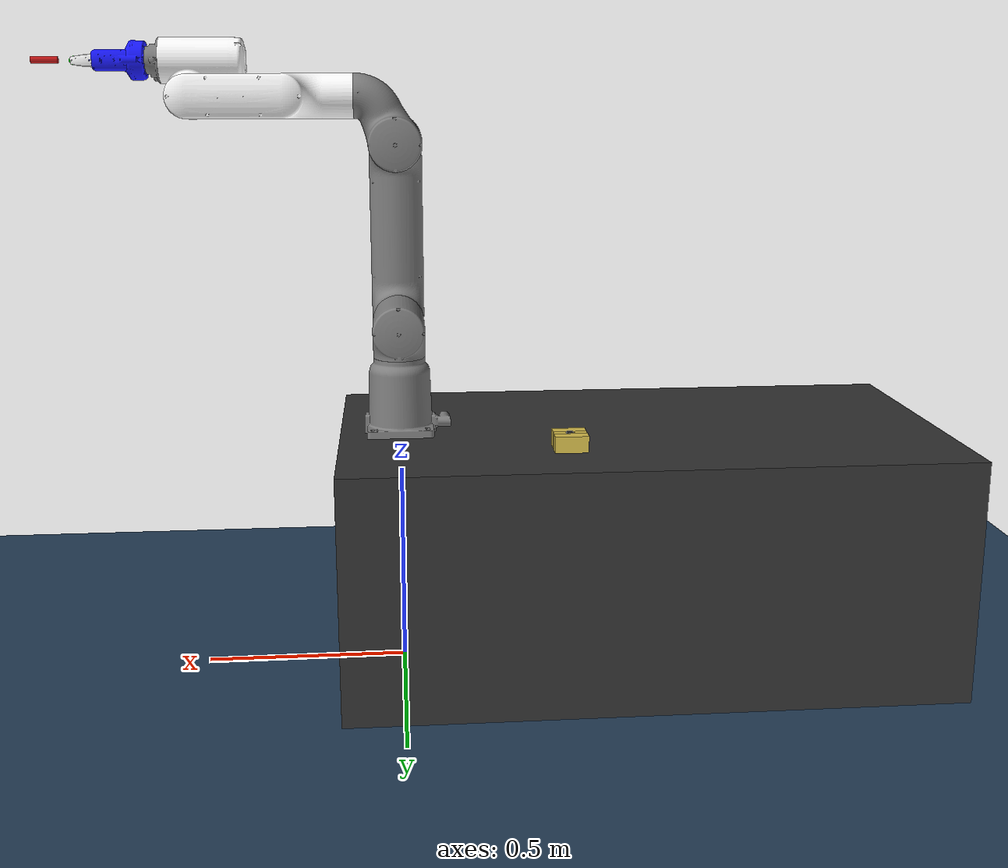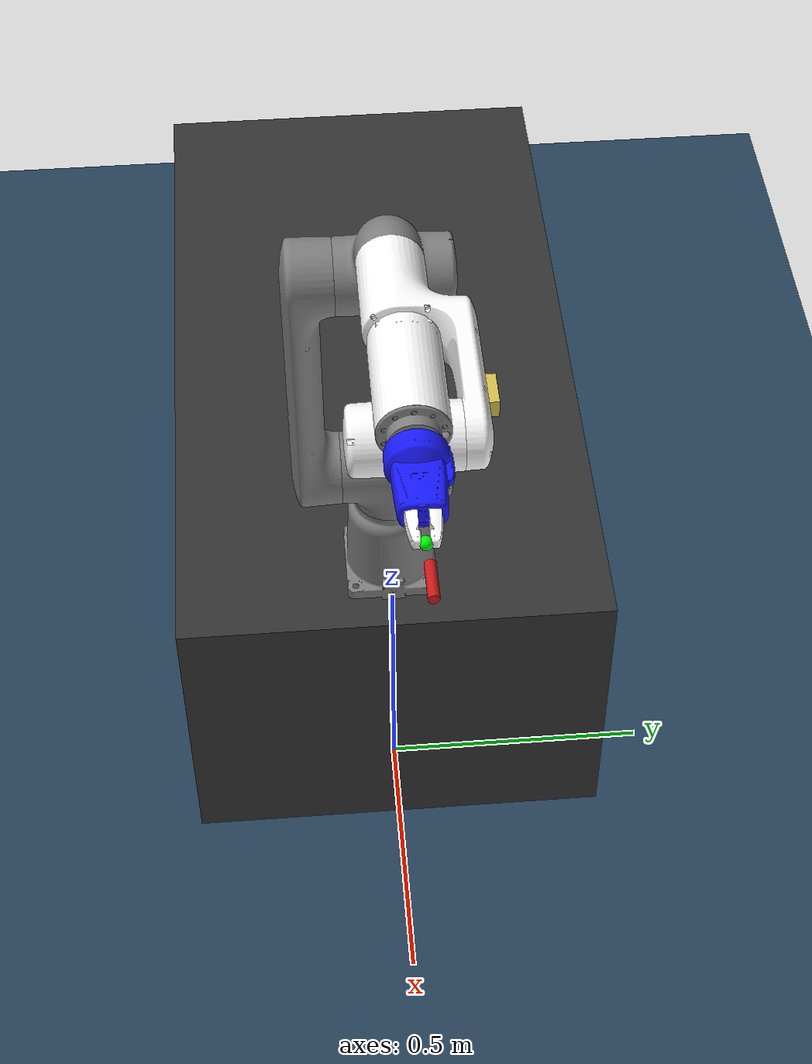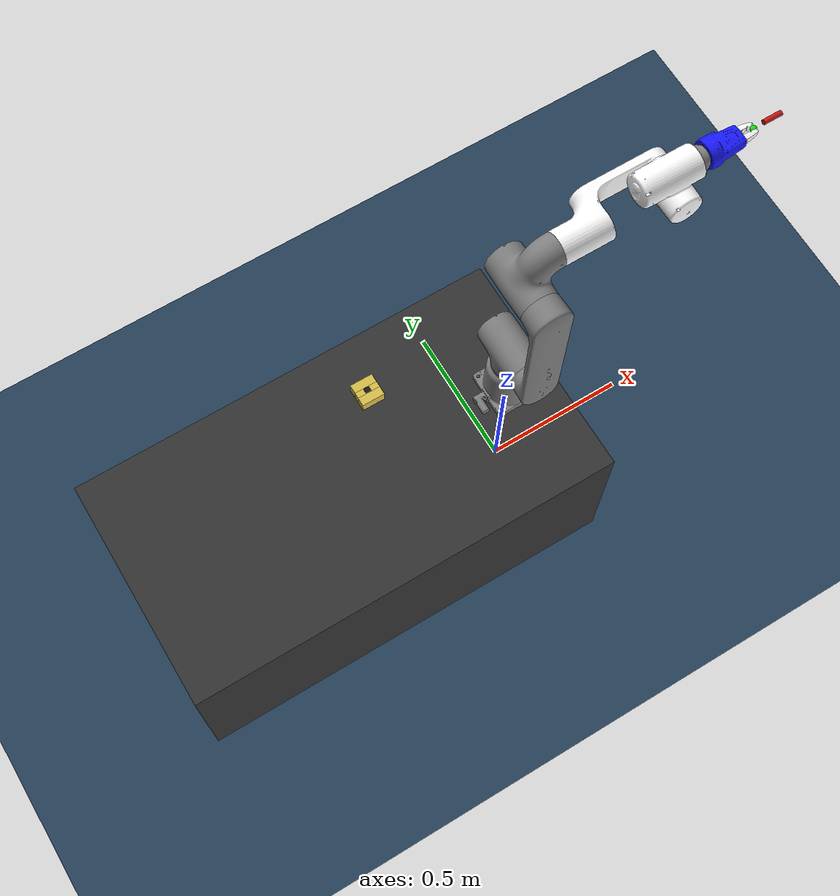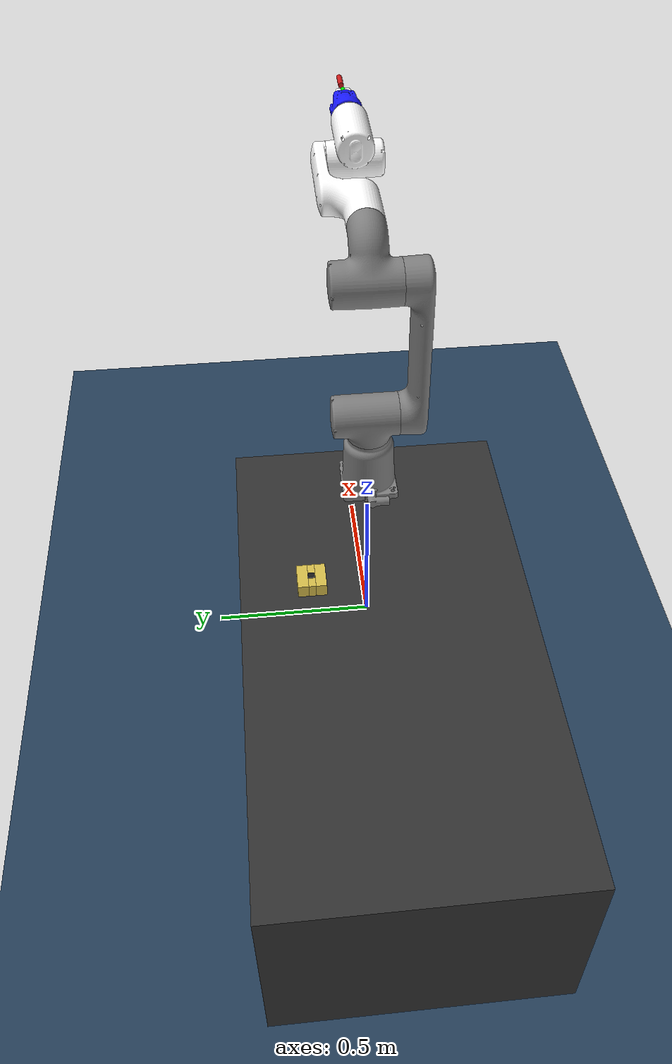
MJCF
<mujoco model="pick and place scene">

	<!-- ── Simulation options ───────────────────────────────────────── -->
	<option
	  gravity    = "0 0 -9.81"
	  solver     = "Newton"
	  timestep   = "0.0005"
	  iterations = "200"
	  tolerance  = "1e-10"
	  noslip_iterations = "10"
	  noslip_tolerance  = "1e-10"
	  integrator = "implicitfast"
  />

	<!-- ── Material-class defaults ──────────────────────────────────── -->
	<default>
		<!-- Shared contact solver params for all geoms -->
		<geom
		  solref  = "0.001 1"
		  solimp  = "0.95 0.99 0.001 0.5 2"
		  condim  = "6"
    />

		<!-- Steel / aluminium pin -->
		<default class="metal">
			<geom
			  friction = "0.30 0.005 0.0001"
			  contype  = "1"
			  conaffinity = "1"
      />
		</default>

		<!-- ABS / nylon insertion box walls -->
		<default class="plastic">
			<geom
			  friction = "0.70 0.010 0.001"
			  contype  = "1"
			  conaffinity = "1"
      />
		</default>

		<!-- Wooden / MDF table surface -->
		<default class="wood">
			<geom
			  friction = "0.80 0.010 0.001"
			  contype  = "1"
			  conaffinity = "1"
      />
		</default>

		<!-- Rubber floor mat -->
		<default class="rubber">
			<geom
			  friction = "1.60 0.020 0.005"
			  contype  = "1"
			  conaffinity = "1"
      />
		</default>
	</default>

	<statistic meansize=".05"/>

	<visual>
		<headlight diffuse="0.6 0.6 0.6" ambient="0.3 0.3 0.3" specular="0 0 0"/>
		<rgba haze="0.15 0.25 0.35 1"/>
	</visual>

	<asset>
		<texture type="skybox" builtin="gradient" rgb1="0.3 0.5 0.7" rgb2="0 0 0"
		  width="512" height="3072"/>
		<texture type="2d" name="groundplane" builtin="checker" mark="edge"
		  rgb1="0.2 0.3 0.4" rgb2="0.1 0.2 0.3" markrgb="0.8 0.8 0.8"
		  width="300" height="300"/>
		<material name="groundplane" texture="groundplane" texuniform="true"
		  texrepeat="5 5" reflectance="0.2"/>
	</asset>

	<include file="assets/gofa_asset.xml"/>

	<worldbody>
		<body pos="0 0 0.6">
			<include file="assets/gofa_body.xml"/>
		</body>
	</worldbody>

	<worldbody>
		<light pos="0 0 2" dir="0 0 -1" directional="true"/>

		<geom name="floor" size="0 0 0.05" type="plane"
		  material="groundplane" class="rubber"/>

		<!-- ── Table ─────────────────────────────────── -->
		<body name="table" pos="-0.6 0 0.3">
			<inertial pos="0 0 0" mass="20" diaginertia="2.0 4.0 4.0"/>
			<geom type="box" size="0.75 0.4 0.3" rgba="0.2 0.2 0.2 1"
			  class="wood"/>
		</body>

		<!-- ── Cylinder (steel pin, m=10g, r=8mm, h=60mm) ───────────── -->
		<body name="cylinder_body" pos="0.8 0 1.5" euler="0 90 0" gravcomp="0">
			<inertial pos="0 0 0" mass="0.05"
			  diaginertia="1 1 1"/>
			<freejoint name="cylinder_free"/>
			<site name="cylinder_site" pos="0 0 0.02" euler="0 90 0"/>
			<geom type="cylinder" name ="cylinder_geom" size="0.008 0.03" rgba="0.8 0.1 0.1 1"
			  class="metal"/>
		</body>

		<!-- ── Insertion box (ABS plastic, box-with-hole) ───────────── -->
		<body name="insertion_box" pos="-0.4 0.2 0.62">
			<inertial pos="0 0 0" mass="0.5"
			  diaginertia="3.33e-4 3.33e-4 5.33e-4"/>

			<!-- Visual-only cylinder shows the hole (no collision) -->
			<geom name="hole_visual" type="cylinder" size="0.010 0.021"
			  rgba="0.1 0.1 0.1 1" contype="0" conaffinity="0"/>

			<!-- North wall (+Y) -->
			<geom name="box_wall_n" type="box" size="0.040 0.015 0.020"
			  pos="0  0.025 0" rgba="0.85 0.75 0.3 1" class="plastic"/>

			<!-- South wall (-Y) -->
			<geom name="box_wall_s" type="box" size="0.040 0.015 0.020"
			  pos="0 -0.025 0" rgba="0.85 0.75 0.3 1" class="plastic"/>

			<!-- East wall (+X) -->
			<geom name="box_wall_e" type="box" size="0.015 0.010 0.020"
			  pos=" 0.025 0 0" rgba="0.85 0.75 0.3 1" class="plastic"/>

			<!-- West wall (-X) -->
			<geom name="box_wall_w" type="box" size="0.015 0.010 0.020"
			  pos="-0.025 0 0" rgba="0.85 0.75 0.3 1" class="plastic"/>

			<!-- Bottom floor (cylinder lands here on full insertion) -->
			<geom name="box_floor" type="box" size="0.040 0.040 0.003"
			  pos="0 0 -0.023" rgba="0.85 0.75 0.3 1" class="plastic"/>
		</body>

		<!-- External camera -->
		<camera
		  name       = "external_camera"
		  pos        = "-0.5 0 1.3"
		  euler      = "0 -15 -90"
		  mode       = "fixed"
		  resolution = "1280 720"
		  fovy       = "69"
    />
	</worldbody>

	<!-- ── Explicit contact pair: cylinder ↔ insertion box walls ────── -->
	<contact>
		<pair geom1="cylinder_geom" geom2="box_wall_n"
		  solref="0.0005 1" solimp="0.97 0.999 0.0005 0.5 2" condim="6"/>
		<pair geom1="cylinder_geom" geom2="box_wall_s"
		  solref="0.0005 1" solimp="0.97 0.999 0.0005 0.5 2" condim="6"/>
		<pair geom1="cylinder_geom" geom2="box_wall_e"
		  solref="0.0005 1" solimp="0.97 0.999 0.0005 0.5 2" condim="6"/>
		<pair geom1="cylinder_geom" geom2="box_wall_w"
		  solref="0.0005 1" solimp="0.97 0.999 0.0005 0.5 2" condim="6"/>
		<pair geom1="cylinder_geom" geom2="box_floor"
		  solref="0.0005 1" solimp="0.97 0.999 0.0005 0.5 2" condim="6"/>
	</contact>

	<!-- ── Sensors ──────────────────────────────────────────────────── -->
	<sensor>
		<force  name="force_sensor"  site="ee_site"/>
		<torque name="torque_sensor" site="ee_site"/>
	</sensor>

	<!-- ── Constrain cylinder to robot EE ───────────────────────────── -->
	<equality>
		<weld
			name="cylinder_to_ee"
			site1="ee_site"
			site2="cylinder_site"
			solref   = "0.0002 1"
			solimp   = "0.999 0.9999 0.0001 0.5 2"
			/>
	</equality>

</mujoco>

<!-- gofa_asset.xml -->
<mujoco>
<compiler meshdir="assets/mesh" inertiafromgeom="true"/>

<asset>
	<mesh name="link0" file="CRB15000_5kg-950_OmniCore_rev00_LINK0_CAD.STL" />
	<mesh name="link1" file="CRB15000_5kg-950_OmniCore_rev00_LINK1_CAD.STL" />
	<mesh name="link2" file="CRB15000_5kg-950_OmniCore_rev00_LINK2_CAD.STL" />
	<mesh name="link3" file="CRB15000_5kg-950_OmniCore_rev00_LINK3_CAD.STL" />
	<mesh name="link4" file="CRB15000_5kg-950_OmniCore_rev00_LINK4_CAD.STL" />
	<mesh name="link5" file="CRB15000_5kg-950_OmniCore_rev00_LINK5_CAD.STL" />
	<mesh name="link6" file="CRB15000_5kg-950_OmniCore_rev00_LINK6_CAD.STL" />
	<mesh name="gripper_body" file="gripper_body.STL" />
	<mesh name="finger1" file="finger1.STL" />
	<mesh name="finger2" file="finger2.STL" />

	<!-- Add checkerboard texture and material -->
	<texture name="checker_tex" type="2d" builtin="checker" width="512" height="512" />
	<material name="checker_mat" texture="checker_tex" texrepeat="8 8" rgba="1 1 1 1"/>
</asset>

	<actuator>
		<position name="joint1_act" joint="joint1" ctrlrange="0 6.28" kp="1000" dampratio="1"/>
		<position name="joint2_act" joint="joint2" ctrlrange="-3.14 3.14" kp="1000" dampratio="1"/>
		<position name="joint3_act" joint="joint3" ctrlrange="-3.14 3.14" kp="1000" dampratio="1"/>
		<position name="joint4_act" joint="joint4" ctrlrange="-3.14 3.14" kp="1000" dampratio="1"/>
		<position name="joint5_act" joint="joint5" ctrlrange="-3.14 3.14" kp="1000" dampratio="1"/>
		<position name="joint6_act" joint="joint6" ctrlrange="-3.14 3.14" kp="50" dampratio="1"/>
		<position name="finger1_act" joint="joint_finger1" ctrllimited="true" ctrlrange="0 0.012" kp="100" dampratio="1"/>
		<position name="finger2_act" joint="joint_finger2" ctrllimited="true" ctrlrange="0 0.012" kp="100" dampratio="1"/>
	</actuator>

	<contact>
		<exclude body1="link0" body2="link1"/>
		<exclude body1="link1" body2="link2"/>
		<exclude body1="link2" body2="link3"/>
		<exclude body1="link3" body2="link4"/>
		<exclude body1="link4" body2="link5"/>
		<exclude body1="link5" body2="link6"/>
		<exclude body1="link6" body2="gripper"/>
	</contact>

</mujoco>

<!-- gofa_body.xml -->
<mujoco>
	<frame name="robot_offset" pos="-0.125 -0.21 0">
		<body name="robot">
			<body name="link0" gravcomp="1">
				<geom type="mesh" mesh="link0" rgba ="0.5 0.5 0.5 1" gap="0.01" mass="3.50083457958494"/>

				<body name="link1" gravcomp="1">
					<joint name="joint1" type="hinge" axis="0 0 1" range="0 360" limited="true" pos="0.125 0.21 0"/>
					<geom type="mesh" mesh="link1" rgba ="0.5 0.5 0.5 1" gap="0.01" mass="2.76743491139404"/>

					<body name="link2" gravcomp="1">
						<joint name="joint2" type="hinge" axis="0 1 0" range="-90 90" limited="true" pos="0.125 0.21 0.265"/>
						<geom type="mesh" mesh="link2" rgba ="0.5 0.5 0.5 1" gap="0.01" mass="4.28904168670464"/>

						<body name="link3" gravcomp="1">
							<joint name="joint3" type="hinge" axis="0 1 0" range="-90 90" limited="true" pos="0.125 0.21 0.71"/>
							<geom type="mesh" mesh="link3" rgba ="0.5 0.5 0.5 1" gap="0.01" mass="3.38333107992875"/>

							<body name="link4" gravcomp="1">
								<joint name="joint4" type="hinge" axis="1 0 0" range="-90 90" limited="true" pos="0.125 0.205 0.8185"/>
								<geom type="mesh" mesh="link4" rgba ="1 1 1 1" gap="0.01" mass="2.77857535641324"/>

								<body name="link5" gravcomp="1">
									<joint name="joint5" type="hinge" axis="0 1 0" range="-90 90" limited="true" pos="0.5959 0.205 0.8183"/>
									<geom type="mesh" mesh="link5" rgba ="1 1 1 1" gap="0.01" mass="3.01105814739001"/>
									<body name="realsense" pos="0.65 0.205 0.965" gravcomp="1">
										<!-- Wrist mounted camera-->
										<camera name="camera_depth" pos="0 0.015 0" euler="0 -90 -90" resolution="1280 720" fovy="69"/>
										<camera name="camera_rgb" euler=" 0 -90 -90" resolution="1280 720" fovy="69"/>
									</body>

									<body name="link6" gravcomp="1">
										<joint name="joint6" type="hinge" axis="1 0 0" range="-360 360" limited="true" pos="0.125 0.208 0.899"/>
										<geom type="mesh" mesh="link6" mass="0.146500988015653" solref="0.002 1" solimp="0.99 0.99 0.001" friction="2 1 1"/>

										<body name="gripper" gravcomp="1">
											<geom type="mesh" mesh="gripper_body" rgba="0.1 0.1 1 1" mass="0.4" contype="1" conaffinity="1"/>
											<site  name="ee_site" pos="0.86 0.208 0.899" size="0.01" rgba="0 1 0 1"/>
											<body>
												<joint name="joint_finger1" type="slide" axis="0 1 0" range="-0.006 0.006" limited="true" pos="0.125 0.21 0"/>
												<geom type="mesh" mesh="finger1" rgba="1 1 1 1" solref="0.002 1" solimp="0.99 0.99 0.001" friction="2 1 1" contype="1" conaffinity="1"/>
											</body>

											<body>
												<joint name="joint_finger2" type="slide" axis="0 1 0" range="-0.006 0.006" limited="true" pos="0.125 0.21 0"/>
												<geom type="mesh" mesh="finger2" rgba="1 1 1 1" solref="0.002 1" solimp="0.99 0.99 0.001" friction="2 1 1" contype="1" conaffinity="1"/>
											</body>

										</body>
									</body>
								</body>
							</body>
						</body>
					</body>
				</body>
			</body>

		</body>
	</frame>

</mujoco>
